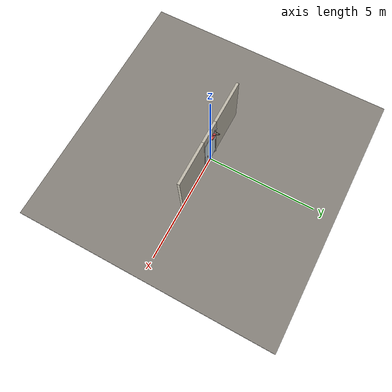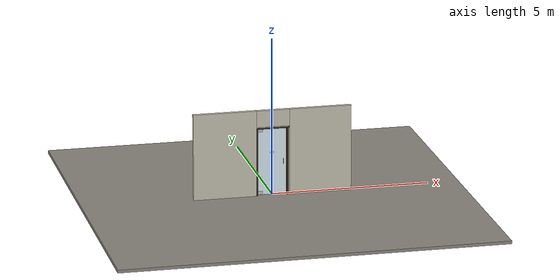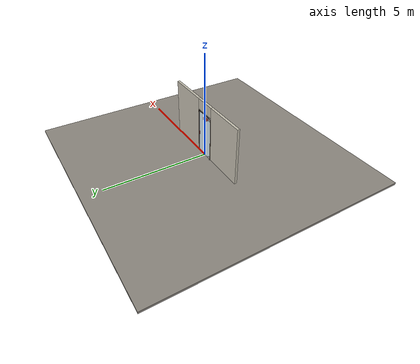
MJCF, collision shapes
<?xml version="1.0" ?>
<mujoco model="db0712_swing_single_full">
  <compiler angle="radian" meshdir="../../hardware" texturedir="../../textures" autolimits="true" inertiafromgeom="false"/>
  <option timestep="0.002" integrator="implicitfast" cone="elliptic" impratio="10" noslip_iterations="3">
    <flag multiccd="enable"/>
  </option>
  <size memory="16M"/>
  <default>
    <geom condim="4" solref="0.005 1" solimp="0.95 0.99 0.001"/>
    <joint solreflimit="0.005 1" solimplimit="0.95 0.99 0.001"/>
    <tendon solreflimit="0.005 1"/>
    <equality solref="0.002 1"/>
  </default>
  <visual>
    <headlight ambient="0.4 0.4 0.4" diffuse="0.7 0.7 0.7" specular="0.2 0.2 0.2"/>
    <quality shadowsize="4096"/>
    <map znear="0.01" zfar="60"/>
  </visual>
  <asset>
    <mesh name="closer_body_fdc4667657" file="closer_body_fdc4667657.obj"/>
    <mesh name="pull_1e5d69a91a" file="pull_1e5d69a91a.obj"/>
    <material name="mat_floor" rgba="0.55 0.53 0.5 1" specular="0.2" shininess="0.15" reflectance="0"/>
    <material name="mat_wall" rgba="0.78 0.76 0.7 1" specular="0.2" shininess="0.1" reflectance="0"/>
    <material name="mat_leaf" rgba="0.85 0.92 0.95 0.25" specular="0.2" shininess="0.95" reflectance="0.1"/>
    <material name="mat_glass_leaf" rgba="0.85 0.92 0.95 0.25" specular="0.2" shininess="0.95" reflectance="0.1"/>
    <material name="mat_patch" rgba="0.75 0.76 0.77 1" specular="0.8" shininess="0.65" reflectance="0.4"/>
    <material name="mat_hinge" rgba="0.65 0.66 0.68 1" specular="0.74" shininess="0.5" reflectance="0.36"/>
    <material name="mat_op_stainless" rgba="0.75 0.76 0.77 1" specular="0.8" shininess="0.65" reflectance="0.4"/>
    <material name="mat_frame" rgba="0.22 0.17 0.13 1" specular="0.8" shininess="0.6" reflectance="0.4"/>
    <material name="mat_closer" rgba="0.22 0.17 0.13 1" specular="0.8" shininess="0.6" reflectance="0.4"/>
    <material name="mat_sign" rgba="0.75 0.76 0.77 1" specular="0.8" shininess="0.65" reflectance="0.4"/>
    <texture name="skybox" type="skybox" builtin="gradient" rgb1="0.6 0.7 0.85" rgb2="0.9 0.92 0.95" width="256" height="256"/>
  </asset>
  <worldbody>
    <light name="sun" pos="1.5 -2.5 4" dir="-0.3 0.5 -0.8" directional="true" diffuse="0.8 0.8 0.8" specular="0.3 0.3 0.3" castshadow="true"/>
    <light name="fill" pos="-1.5 2.5 3" dir="0.3 -0.5 -0.7" directional="true" diffuse="0.35 0.35 0.4" castshadow="false"/>
    <camera name="robot_view" pos="0 -2.682313 1.812087" xyaxes="1 0 0 0 0.26963 0.962964" fovy="52"/>
    <camera name="far_view" pos="0 2.593312 1.812087" xyaxes="-1 0 0 0 -0.26963 0.962964" fovy="52"/>
    <camera name="iso" pos="2.004737 -2.260263 2.234138" xyaxes="0.741536 0.670913 0 -0.242917 0.268487 0.932151" fovy="46"/>
    <camera name="detail_handle" pos="0.5335 -0.866 1.347" xyaxes="0.97561 0.219512 0 -0.070934 0.315262 0.94635" fovy="38"/>
    <geom name="floor" type="box" size="6 6 0.05" pos="0 0 -0.05" material="mat_floor" group="0" contype="1" conaffinity="1" friction="0.8 0.005 0.0001" density="2400"/>
    <geom name="wall_left" type="box" size="0.99675 0.0575 1.3735" pos="-1.50325 -0.0445 1.3735" material="mat_wall" group="0" contype="1" conaffinity="1" friction="0.6 0.005 0.0001" density="800"/>
    <geom name="wall_right" type="box" size="0.98175 0.0575 1.3735" pos="1.51825 -0.0445 1.3735" material="mat_wall" group="0" contype="1" conaffinity="1" friction="0.6 0.005 0.0001" density="800"/>
    <geom name="wall_header" type="box" size="0.5215 0.0575 0.2625" pos="0.015 -0.0445 2.4845" material="mat_wall" group="0" contype="1" conaffinity="1" friction="0.6 0.005 0.0001" density="800"/>
    <geom name="pivot_bottom_socket" type="box" size="0.035 0.035 0.0085" pos="-0.4585 0.013 -0.0015" material="mat_hinge" group="1" contype="0" conaffinity="0" density="7850"/>
    <geom name="pivot_top_bracket" type="box" size="0.035 0.035 0.0355" pos="-0.4585 0.013 2.1865" material="mat_hinge" group="1" contype="0" conaffinity="0" density="7850"/>
    <geom name="jamb_hinge" type="box" size="0.0225 0.0575 1.0735" pos="-0.484 -0.0445 1.0735" material="mat_frame" group="0" contype="1" conaffinity="1" friction="0.6 0.005 0.0001" density="300"/>
    <geom name="jamb_strike" type="box" size="0.0225 0.0575 1.0735" pos="0.484 -0.0445 1.0735" material="mat_frame" group="0" contype="1" conaffinity="1" friction="0.6 0.005 0.0001" density="300"/>
    <geom name="stud_strike" type="box" size="0.015 0.0575 1.0735" pos="0.5215 -0.0445 1.0735" material="mat_wall" group="0" contype="1" conaffinity="1" friction="0.6 0.005 0.0001" density="500"/>
    <geom name="jamb_head" type="box" size="0.5215 0.0575 0.0225" pos="0.015 -0.0445 2.1695" material="mat_frame" group="0" contype="1" conaffinity="1" friction="0.6 0.005 0.0001" density="300"/>
    <geom name="head_stud" type="box" size="0.5215 0.0575 0.015" pos="0.015 -0.0445 2.207" material="mat_wall" group="0" contype="1" conaffinity="1" friction="0.6 0.005 0.0001" density="500"/>
    <geom name="closer_bracket" type="box" size="0.03 0.012 0.014" pos="-0.3615 0.025 2.177" material="mat_closer" group="1" contype="0" conaffinity="0" density="2700"/>
    <site name="approach_point" pos="0 -1.5 0" quat="1 0 0 0" size="0.05" rgba="0.2 0.9 0.2 0.5" group="4"/>
    <site name="goal_point" pos="0 1.5 0" quat="1 0 0 0" size="0.05" rgba="0.2 0.9 0.2 0.5" group="4"/>
    <site name="door_plane_center" pos="0 0 1.0735" quat="1 0 0 0" size="0.02" rgba="0.2 0.9 0.2 0.5" group="4"/>
    <body name="leaf" pos="-0.4615 0 0">
      <inertial pos="0.350568 0.043791 1.843049" mass="64.466789" quat="-0.434509 0.46585 0.548824 0.541274" diaginertia="1.594937041 15.013952706 16.485559645"/>
      <joint name="leaf_hinge" type="hinge" axis="0 0 1" pos="0.003 0.013 0" limited="true" range="0 1.570796" solreflimit="0.02 1" damping="12.268966" frictionloss="1.519116" stiffness="15.342537" springref="-1.864099" armature="0.02"/>
      <geom name="leaf_glass" type="box" size="0.457 0.006 1.067" pos="0.463 0 1.076" material="mat_glass_leaf" group="0" contype="1" conaffinity="1" friction="0.4 0.005 0.0001" density="1"/>
      <geom name="leaf_patch_bot" type="box" size="0.08 0.014 0.05" pos="0.086 0 0.069" material="mat_patch" group="1" contype="0" conaffinity="0" density="1"/>
      <geom name="leaf_patch_top" type="box" size="0.08 0.014 0.05" pos="0.086 0 2.083" material="mat_patch" group="1" contype="0" conaffinity="0" density="1"/>
      <geom name="pivot_bottom" type="cylinder" size="0.014 0.004" pos="0.003 0.013 0.004" material="mat_hinge" group="1" contype="0" conaffinity="0" density="7850"/>
      <geom name="pivot_top" type="cylinder" size="0.014 0.004" pos="0.003 0.013 2.147" material="mat_hinge" group="1" contype="0" conaffinity="0" density="7850"/>
      <geom name="leaf_pull_n" type="mesh" mesh="pull_1e5d69a91a" pos="0.815 -0.006 1.067" quat="0.707107 0.707107 0 0" material="mat_op_stainless" group="1" contype="0" conaffinity="0" density="3000"/>
      <geom name="leaf_pull_col_n" type="capsule" size="0.0095 0.08" pos="0.815 -0.066 1.067" material="mat_op_stainless" group="3" contype="1" conaffinity="1" rgba="0.8 0.3 0.3 0.25" friction="0.7 0.01 0.0001" density="3000"/>
      <geom name="leaf_pull_p" type="mesh" mesh="pull_1e5d69a91a" pos="0.815 0.006 1.067" quat="-0.707107 0.707107 0 0" material="mat_op_stainless" group="1" contype="0" conaffinity="0" density="3000"/>
      <geom name="leaf_pull_col_p" type="capsule" size="0.0095 0.08" pos="0.815 0.066 1.067" material="mat_op_stainless" group="3" contype="1" conaffinity="1" rgba="0.8 0.3 0.3 0.25" friction="0.7 0.01 0.0001" density="3000"/>
      <geom name="closer_body" type="mesh" mesh="closer_body_fdc4667657" pos="0.3 0.006 2.054" quat="-0.707107 0.707107 0 0" material="mat_closer" group="1" contype="0" conaffinity="0" density="2000"/>
      <geom name="closer_body_col" type="box" size="0.145 0.05 0.035" pos="0.3 0.056 2.054" material="mat_closer" group="3" contype="1" conaffinity="1" rgba="0.8 0.3 0.3 0.25" friction="0.6 0.005 0.0001" density="2000"/>
      <geom name="closer_pinion_shaft" type="cylinder" size="0.008 0.0615" pos="0.3 0.056 2.1155" material="mat_closer" group="1" contype="0" conaffinity="0" density="2700"/>
      <geom name="sign_push" type="box" size="0.06 0.001 0.03" pos="0.463 -0.007 1.359" material="mat_sign" group="2" contype="0" conaffinity="0" density="7900"/>
      <geom name="sign_pull" type="box" size="0.06 0.001 0.03" pos="0.463 0.007 1.359" material="mat_sign" group="2" contype="0" conaffinity="0" density="7900"/>
      <site name="leaf_pull_grip_n" pos="0.815 -0.066 1.067" quat="1 0 0 0" size="0.012" rgba="0.2 0.9 0.2 0.5" group="4"/>
      <site name="leaf_pull_grip_p" pos="0.815 0.066 1.067" quat="1 0 0 0" size="0.012" rgba="0.2 0.9 0.2 0.5" group="4"/>
      <site name="leaf_edge_mid" pos="0.92 0 1.067" quat="1 0 0 0" size="0.02" rgba="0.2 0.9 0.2 0.5" group="4"/>
      <body name="closer_arm_main" pos="0.3 0.056 2.177" quat="0.454107 0 0 0.890947">
        <inertial pos="0.14 0 0" mass="0.12096" quat="1 0 0 0" diaginertia="0.000003588 0.00079128 0.000792852"/>
        <joint name="closer_pinion" type="hinge" axis="0 0 1" limited="false" damping="0.01" armature="0.002"/>
        <geom name="closer_arm_main_geom" type="box" size="0.14 0.008 0.005" pos="0.14 0 0" material="mat_closer" group="1" contype="0" conaffinity="0" density="2700"/>
        <body name="closer_arm_fore" pos="0.28 0 0" quat="-0.373215 0 0 -0.927745">
          <inertial pos="0.128088 0 0" mass="0.076531" quat="1 0 0 0" diaginertia="0.000001771 0.000437665 0.000438201"/>
          <joint name="closer_elbow" type="hinge" axis="0 0 1" limited="false" damping="0.01" armature="0.002"/>
          <geom name="closer_arm_fore_geom" type="box" size="0.1125 0.007 0.004" pos="0.1125 0 0" material="mat_closer" group="1" contype="0" conaffinity="0" density="2700"/>
          <geom name="closer_fore_neck" type="box" size="0.0175 0.003 0.003" pos="0.2425 0 0" material="mat_closer" group="1" contype="0" conaffinity="0" density="2700"/>
          <geom name="closer_fore_pivot" type="cylinder" size="0.005 0.012" pos="0.26 0 0" material="mat_closer" group="1" contype="0" conaffinity="0" density="2700"/>
        </body>
      </body>
    </body>
  </worldbody>
  <equality>
    <connect name="closer_arm_connect" body1="closer_arm_fore" body2="world" anchor="0.26 0 0" active="true"/>
  </equality>
  <contact>
    <exclude body1="closer_arm_main" body2="leaf"/>
    <exclude body1="closer_arm_fore" body2="leaf"/>
    <exclude body1="closer_arm_main" body2="closer_arm_fore"/>
  </contact>
  <sensor>
    <jointpos name="leaf_hinge_pos" joint="leaf_hinge"/>
    <jointvel name="leaf_hinge_vel" joint="leaf_hinge"/>
  </sensor>
</mujoco>
